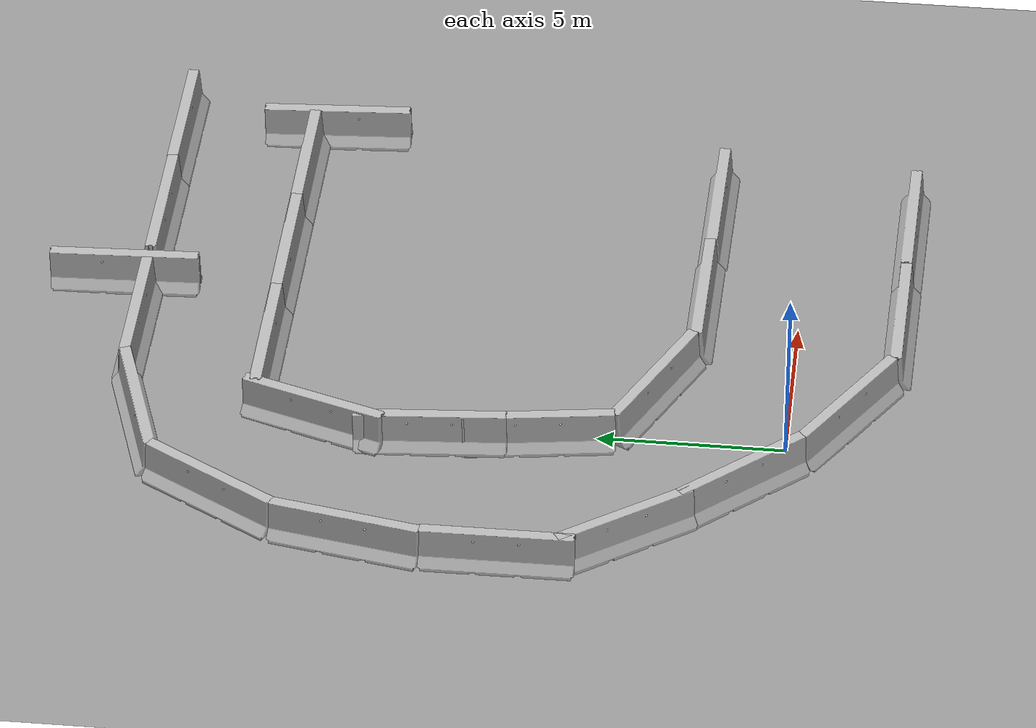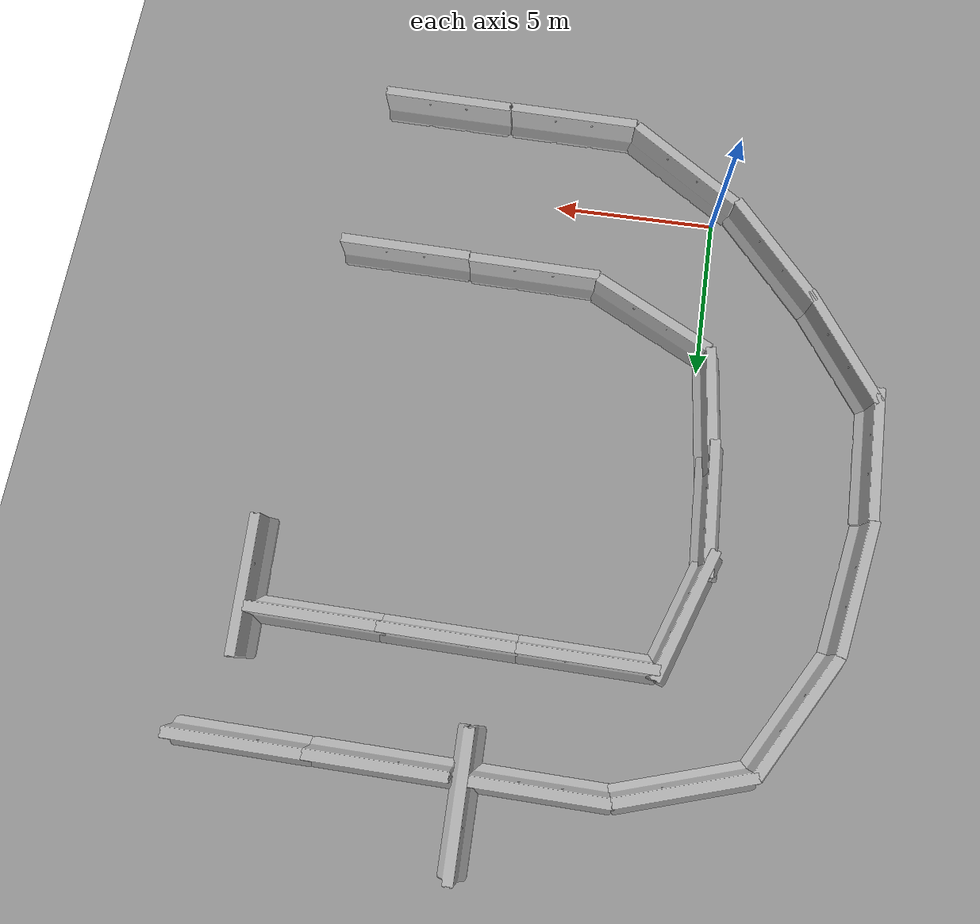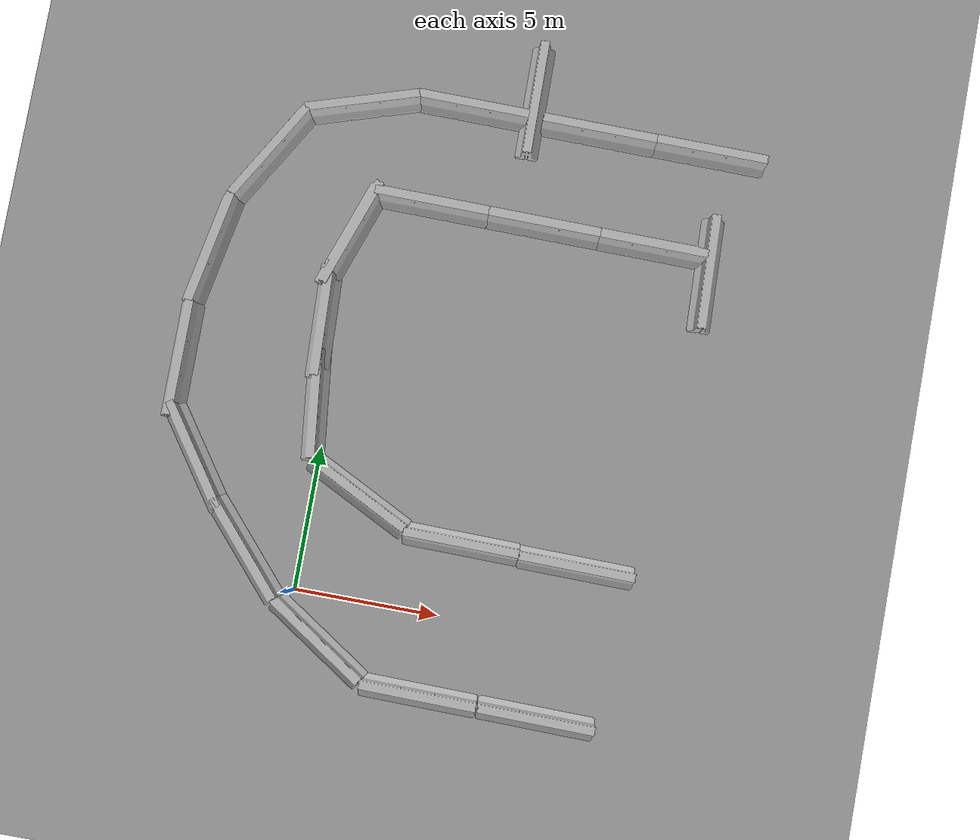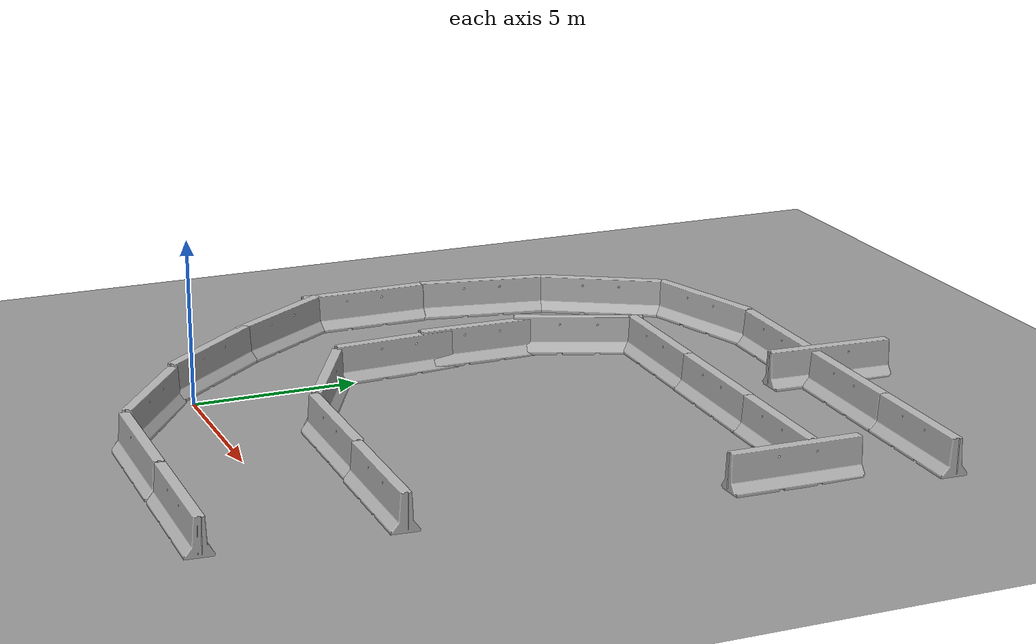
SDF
<sdf version="1.6">
 <world name="default">
  <model name="ground_plane_0">
   <static>1</static>
   <link name="link">
    <collision name="collision">
     <geometry><plane><normal>0 0 1</normal><size>100 100</size></plane></geometry>
     <surface><friction><ode><mu>100</mu><mu2>50</mu2></ode></friction></surface>
    </collision>
    <visual name="visual">
     <cast_shadows>0</cast_shadows>
     <geometry><plane><normal>0 0 1</normal><size>100 100</size></plane></geometry>
     <material>
      <script><uri>file://media/materials/scripts/gazebo.material</uri><name>Gazebo/Grey</name></script>
     </material>
    </visual>
    <velocity_decay><linear>0</linear><angular>0</angular></velocity_decay>
   </link>
   <pose>0.497681 0 0 0 -0 0</pose>
  </model>
  <model name="jersey_barrier_clone_3">
   <static>1</static>
   <link name="link">
    <visual name="visual">
     <geometry>
      <mesh><uri>model://jersey_barrier/meshes/jersey_barrier.dae</uri><scale>1 1 1</scale></mesh>
     </geometry>
    </visual>
    <collision name="upright">
     <pose>0 0 0.5715 0 -0 0</pose>
     <geometry><box><size>4.06542 0.3063 1.143</size></box></geometry>
    </collision>
    <collision name="base">
     <pose>0 0 0.032258 0 -0 0</pose>
     <geometry><box><size>4.06542 0.8107 0.064516</size></box></geometry>
    </collision>
    <collision name="base2">
     <pose>0 0 0.1 0 -0 0</pose>
     <geometry><box><size>4.06542 0.65 0.1</size></box></geometry>
    </collision>
    <collision name="base3">
     <pose>0 0 0.2 0 -0 0</pose>
     <geometry><box><size>4.06542 0.5 0.1</size></box></geometry>
    </collision>
    <collision name="left-angle">
     <pose>0 -0.224 0.2401 0.9 -0 0</pose>
     <geometry><box><size>4.06542 0.5 0.064516</size></box></geometry>
    </collision>
    <collision name="right-angle">
     <pose>0 0.224 0.2401 -0.9 0 0</pose>
     <geometry><box><size>4.06542 0.5 0.064516</size></box></geometry>
    </collision>
    <velocity_decay><linear>0</linear><angular>0</angular></velocity_decay>
   </link>
   <pose>-4.2138 3.93525 0 0 0 -0.963328</pose>
  </model>
  <model name="jersey_barrier_clone_4">
   <static>1</static>
   <link name="link">
    <visual name="visual">
     <geometry>
      <mesh><uri>model://jersey_barrier/meshes/jersey_barrier.dae</uri><scale>1 1 1</scale></mesh>
     </geometry>
    </visual>
    <collision name="upright">
     <pose>0 0 0.5715 0 -0 0</pose>
     <geometry><box><size>4.06542 0.3063 1.143</size></box></geometry>
    </collision>
    <collision name="base">
     <pose>0 0 0.032258 0 -0 0</pose>
     <geometry><box><size>4.06542 0.8107 0.064516</size></box></geometry>
    </collision>
    <collision name="base2">
     <pose>0 0 0.1 0 -0 0</pose>
     <geometry><box><size>4.06542 0.65 0.1</size></box></geometry>
    </collision>
    <collision name="base3">
     <pose>0 0 0.2 0 -0 0</pose>
     <geometry><box><size>4.06542 0.5 0.1</size></box></geometry>
    </collision>
    <collision name="left-angle">
     <pose>0 -0.224 0.2401 0.9 -0 0</pose>
     <geometry><box><size>4.06542 0.5 0.064516</size></box></geometry>
    </collision>
    <collision name="right-angle">
     <pose>0 0.224 0.2401 -0.9 0 0</pose>
     <geometry><box><size>4.06542 0.5 0.064516</size></box></geometry>
    </collision>
    <velocity_decay><linear>0</linear><angular>0</angular></velocity_decay>
   </link>
   <pose>-1.94426 1.06883 0 0 0 -0.851266</pose>
  </model>
  <model name="jersey_barrier_clone_5">
   <static>1</static>
   <link name="link">
    <visual name="visual">
     <geometry>
      <mesh><uri>model://jersey_barrier/meshes/jersey_barrier.dae</uri><scale>1 1 1</scale></mesh>
     </geometry>
    </visual>
    <collision name="upright">
     <pose>0 0 0.5715 0 -0 0</pose>
     <geometry><box><size>4.06542 0.3063 1.143</size></box></geometry>
    </collision>
    <collision name="base">
     <pose>0 0 0.032258 0 -0 0</pose>
     <geometry><box><size>4.06542 0.8107 0.064516</size></box></geometry>
    </collision>
    <collision name="base2">
     <pose>0 0 0.1 0 -0 0</pose>
     <geometry><box><size>4.06542 0.65 0.1</size></box></geometry>
    </collision>
    <collision name="base3">
     <pose>0 0 0.2 0 -0 0</pose>
     <geometry><box><size>4.06542 0.5 0.1</size></box></geometry>
    </collision>
    <collision name="left-angle">
     <pose>0 -0.224 0.2401 0.9 -0 0</pose>
     <geometry><box><size>4.06542 0.5 0.064516</size></box></geometry>
    </collision>
    <collision name="right-angle">
     <pose>0 0.224 0.2401 -0.9 0 0</pose>
     <geometry><box><size>4.06542 0.5 0.064516</size></box></geometry>
    </collision>
    <velocity_decay><linear>0</linear><angular>0</angular></velocity_decay>
   </link>
   <pose>1.11669 -1.55695 -0.026558 -0.009767 -0.024954 -0.580017</pose>
  </model>
  <model name="jersey_barrier_clone_6">
   <static>1</static>
   <link name="link">
    <visual name="visual">
     <geometry>
      <mesh><uri>model://jersey_barrier/meshes/jersey_barrier.dae</uri><scale>1 1 1</scale></mesh>
     </geometry>
    </visual>
    <collision name="upright">
     <pose>0 0 0.5715 0 -0 0</pose>
     <geometry><box><size>4.06542 0.3063 1.143</size></box></geometry>
    </collision>
    <collision name="base">
     <pose>0 0 0.032258 0 -0 0</pose>
     <geometry><box><size>4.06542 0.8107 0.064516</size></box></geometry>
    </collision>
    <collision name="base2">
     <pose>0 0 0.1 0 -0 0</pose>
     <geometry><box><size>4.06542 0.65 0.1</size></box></geometry>
    </collision>
    <collision name="base3">
     <pose>0 0 0.2 0 -0 0</pose>
     <geometry><box><size>4.06542 0.5 0.1</size></box></geometry>
    </collision>
    <collision name="left-angle">
     <pose>0 -0.224 0.2401 0.9 -0 0</pose>
     <geometry><box><size>4.06542 0.5 0.064516</size></box></geometry>
    </collision>
    <collision name="right-angle">
     <pose>0 0.224 0.2401 -0.9 0 0</pose>
     <geometry><box><size>4.06542 0.5 0.064516</size></box></geometry>
    </collision>
    <velocity_decay><linear>0</linear><angular>0</angular></velocity_decay>
   </link>
   <pose>-5.33572 7.12455 0 0 0 -1.56843</pose>
  </model>
  <model name="jersey_barrier_clone_9">
   <static>1</static>
   <link name="link">
    <visual name="visual">
     <geometry>
      <mesh><uri>model://jersey_barrier/meshes/jersey_barrier.dae</uri><scale>1 1 1</scale></mesh>
     </geometry>
    </visual>
    <collision name="upright">
     <pose>0 0 0.5715 0 -0 0</pose>
     <geometry><box><size>4.06542 0.3063 1.143</size></box></geometry>
    </collision>
    <collision name="base">
     <pose>0 0 0.032258 0 -0 0</pose>
     <geometry><box><size>4.06542 0.8107 0.064516</size></box></geometry>
    </collision>
    <collision name="base2">
     <pose>0 0 0.1 0 -0 0</pose>
     <geometry><box><size>4.06542 0.65 0.1</size></box></geometry>
    </collision>
    <collision name="base3">
     <pose>0 0 0.2 0 -0 0</pose>
     <geometry><box><size>4.06542 0.5 0.1</size></box></geometry>
    </collision>
    <collision name="left-angle">
     <pose>0 -0.224 0.2401 0.9 -0 0</pose>
     <geometry><box><size>4.06542 0.5 0.064516</size></box></geometry>
    </collision>
    <collision name="right-angle">
     <pose>0 0.224 0.2401 -0.9 0 0</pose>
     <geometry><box><size>4.06542 0.5 0.064516</size></box></geometry>
    </collision>
    <velocity_decay><linear>0</linear><angular>0</angular></velocity_decay>
   </link>
   <pose>-5.01886 11.1062 0 0 0 -1.75706</pose>
  </model>
  <model name="jersey_barrier_clone_10">
   <static>1</static>
   <link name="link">
    <visual name="visual">
     <geometry>
      <mesh><uri>model://jersey_barrier/meshes/jersey_barrier.dae</uri><scale>1 1 1</scale></mesh>
     </geometry>
    </visual>
    <collision name="upright">
     <pose>0 0 0.5715 0 -0 0</pose>
     <geometry><box><size>4.06542 0.3063 1.143</size></box></geometry>
    </collision>
    <collision name="base">
     <pose>0 0 0.032258 0 -0 0</pose>
     <geometry><box><size>4.06542 0.8107 0.064516</size></box></geometry>
    </collision>
    <collision name="base2">
     <pose>0 0 0.1 0 -0 0</pose>
     <geometry><box><size>4.06542 0.65 0.1</size></box></geometry>
    </collision>
    <collision name="base3">
     <pose>0 0 0.2 0 -0 0</pose>
     <geometry><box><size>4.06542 0.5 0.1</size></box></geometry>
    </collision>
    <collision name="left-angle">
     <pose>0 -0.224 0.2401 0.9 -0 0</pose>
     <geometry><box><size>4.06542 0.5 0.064516</size></box></geometry>
    </collision>
    <collision name="right-angle">
     <pose>0 0.224 0.2401 -0.9 0 0</pose>
     <geometry><box><size>4.06542 0.5 0.064516</size></box></geometry>
    </collision>
    <velocity_decay><linear>0</linear><angular>0</angular></velocity_decay>
   </link>
   <pose>-3.63028 14.8068 0 0 0 -2.10288</pose>
  </model>
  <model name="jersey_barrier_clone_8_clone">
   <static>1</static>
   <link name="link">
    <visual name="visual">
     <geometry>
      <mesh><uri>model://jersey_barrier/meshes/jersey_barrier.dae</uri><scale>1 1 1</scale></mesh>
     </geometry>
    </visual>
    <collision name="upright">
     <pose>0 0 0.5715 0 -0 0</pose>
     <geometry><box><size>4.06542 0.3063 1.143</size></box></geometry>
    </collision>
    <collision name="base">
     <pose>0 0 0.032258 0 -0 0</pose>
     <geometry><box><size>4.06542 0.8107 0.064516</size></box></geometry>
    </collision>
    <collision name="base2">
     <pose>0 0 0.1 0 -0 0</pose>
     <geometry><box><size>4.06542 0.65 0.1</size></box></geometry>
    </collision>
    <collision name="base3">
     <pose>0 0 0.2 0 -0 0</pose>
     <geometry><box><size>4.06542 0.5 0.1</size></box></geometry>
    </collision>
    <collision name="left-angle">
     <pose>0 -0.224 0.2401 0.9 -0 0</pose>
     <geometry><box><size>4.06542 0.5 0.064516</size></box></geometry>
    </collision>
    <collision name="right-angle">
     <pose>0 0.224 0.2401 -0.9 0 0</pose>
     <geometry><box><size>4.06542 0.5 0.064516</size></box></geometry>
    </collision>
    <velocity_decay><linear>0</linear><angular>0</angular></velocity_decay>
   </link>
   <pose>-0.756716 17.1206 0 0 -0 0.301235</pose>
  </model>
  <model name="jersey_barrier_clone_5_clone">
   <static>1</static>
   <link name="link">
    <visual name="visual">
     <geometry>
      <mesh><uri>model://jersey_barrier/meshes/jersey_barrier.dae</uri><scale>1 1 1</scale></mesh>
     </geometry>
    </visual>
    <collision name="upright">
     <pose>0 0 0.5715 0 -0 0</pose>
     <geometry><box><size>4.06542 0.3063 1.143</size></box></geometry>
    </collision>
    <collision name="base">
     <pose>0 0 0.032258 0 -0 0</pose>
     <geometry><box><size>4.06542 0.8107 0.064516</size></box></geometry>
    </collision>
    <collision name="base2">
     <pose>0 0 0.1 0 -0 0</pose>
     <geometry><box><size>4.06542 0.65 0.1</size></box></geometry>
    </collision>
    <collision name="base3">
     <pose>0 0 0.2 0 -0 0</pose>
     <geometry><box><size>4.06542 0.5 0.1</size></box></geometry>
    </collision>
    <collision name="left-angle">
     <pose>0 -0.224 0.2401 0.9 -0 0</pose>
     <geometry><box><size>4.06542 0.5 0.064516</size></box></geometry>
    </collision>
    <collision name="right-angle">
     <pose>0 0.224 0.2401 -0.9 0 0</pose>
     <geometry><box><size>4.06542 0.5 0.064516</size></box></geometry>
    </collision>
    <velocity_decay><linear>0</linear><angular>0</angular></velocity_decay>
   </link>
   <pose>4.83346 -2.77552 -0.025828 -0.021605 -0.003365 -0.015417</pose>
  </model>
  <model name="jersey_barrier_clone_5_clone_clone">
   <static>1</static>
   <link name="link">
    <visual name="visual">
     <geometry>
      <mesh><uri>model://jersey_barrier/meshes/jersey_barrier.dae</uri><scale>1 1 1</scale></mesh>
     </geometry>
    </visual>
    <collision name="upright">
     <pose>0 0 0.5715 0 -0 0</pose>
     <geometry><box><size>4.06542 0.3063 1.143</size></box></geometry>
    </collision>
    <collision name="base">
     <pose>0 0 0.032258 0 -0 0</pose>
     <geometry><box><size>4.06542 0.8107 0.064516</size></box></geometry>
    </collision>
    <collision name="base2">
     <pose>0 0 0.1 0 -0 0</pose>
     <geometry><box><size>4.06542 0.65 0.1</size></box></geometry>
    </collision>
    <collision name="base3">
     <pose>0 0 0.2 0 -0 0</pose>
     <geometry><box><size>4.06542 0.5 0.1</size></box></geometry>
    </collision>
    <collision name="left-angle">
     <pose>0 -0.224 0.2401 0.9 -0 0</pose>
     <geometry><box><size>4.06542 0.5 0.064516</size></box></geometry>
    </collision>
    <collision name="right-angle">
     <pose>0 0.224 0.2401 -0.9 0 0</pose>
     <geometry><box><size>4.06542 0.5 0.064516</size></box></geometry>
    </collision>
    <velocity_decay><linear>0</linear><angular>0</angular></velocity_decay>
   </link>
   <pose>8.93305 -2.83231 -0.025828 -0.021605 -0.003365 -0.015417</pose>
  </model>
  <model name="jersey_barrier_clone_5_clone_clone_3">
   <static>1</static>
   <link name="link">
    <visual name="visual">
     <geometry>
      <mesh><uri>model://jersey_barrier/meshes/jersey_barrier.dae</uri><scale>1 1 1</scale></mesh>
     </geometry>
    </visual>
    <collision name="upright">
     <pose>0 0 0.5715 0 -0 0</pose>
     <geometry><box><size>4.06542 0.3063 1.143</size></box></geometry>
    </collision>
    <collision name="base">
     <pose>0 0 0.032258 0 -0 0</pose>
     <geometry><box><size>4.06542 0.8107 0.064516</size></box></geometry>
    </collision>
    <collision name="base2">
     <pose>0 0 0.1 0 -0 0</pose>
     <geometry><box><size>4.06542 0.65 0.1</size></box></geometry>
    </collision>
    <collision name="base3">
     <pose>0 0 0.2 0 -0 0</pose>
     <geometry><box><size>4.06542 0.5 0.1</size></box></geometry>
    </collision>
    <collision name="left-angle">
     <pose>0 -0.224 0.2401 0.9 -0 0</pose>
     <geometry><box><size>4.06542 0.5 0.064516</size></box></geometry>
    </collision>
    <collision name="right-angle">
     <pose>0 0.224 0.2401 -0.9 0 0</pose>
     <geometry><box><size>4.06542 0.5 0.064516</size></box></geometry>
    </collision>
    <velocity_decay><linear>0</linear><angular>0</angular></velocity_decay>
   </link>
   <pose>1.57921 3.60488 -0.025828 -0.017952 -0.012484 -0.468527</pose>
  </model>
  <model name="jersey_barrier_clone_5_clone_clone_4">
   <static>1</static>
   <link name="link">
    <visual name="visual">
     <geometry>
      <mesh><uri>model://jersey_barrier/meshes/jersey_barrier.dae</uri><scale>1 1 1</scale></mesh>
     </geometry>
    </visual>
    <collision name="upright">
     <pose>0 0 0.5715 0 -0 0</pose>
     <geometry><box><size>4.06542 0.3063 1.143</size></box></geometry>
    </collision>
    <collision name="base">
     <pose>0 0 0.032258 0 -0 0</pose>
     <geometry><box><size>4.06542 0.8107 0.064516</size></box></geometry>
    </collision>
    <collision name="base2">
     <pose>0 0 0.1 0 -0 0</pose>
     <geometry><box><size>4.06542 0.65 0.1</size></box></geometry>
    </collision>
    <collision name="base3">
     <pose>0 0 0.2 0 -0 0</pose>
     <geometry><box><size>4.06542 0.5 0.1</size></box></geometry>
    </collision>
    <collision name="left-angle">
     <pose>0 -0.224 0.2401 0.9 -0 0</pose>
     <geometry><box><size>4.06542 0.5 0.064516</size></box></geometry>
    </collision>
    <collision name="right-angle">
     <pose>0 0.224 0.2401 -0.9 0 0</pose>
     <geometry><box><size>4.06542 0.5 0.064516</size></box></geometry>
    </collision>
    <velocity_decay><linear>0</linear><angular>0</angular></velocity_decay>
   </link>
   <pose>5.37277 2.5821 -0.027196 -0.021605 -0.003365 -0.015417</pose>
  </model>
  <model name="jersey_barrier_clone_5_clone_clone_5">
   <static>1</static>
   <link name="link">
    <visual name="visual">
     <geometry>
      <mesh><uri>model://jersey_barrier/meshes/jersey_barrier.dae</uri><scale>1 1 1</scale></mesh>
     </geometry>
    </visual>
    <collision name="upright">
     <pose>0 0 0.5715 0 -0 0</pose>
     <geometry><box><size>4.06542 0.3063 1.143</size></box></geometry>
    </collision>
    <collision name="base">
     <pose>0 0 0.032258 0 -0 0</pose>
     <geometry><box><size>4.06542 0.8107 0.064516</size></box></geometry>
    </collision>
    <collision name="base2">
     <pose>0 0 0.1 0 -0 0</pose>
     <geometry><box><size>4.06542 0.65 0.1</size></box></geometry>
    </collision>
    <collision name="base3">
     <pose>0 0 0.2 0 -0 0</pose>
     <geometry><box><size>4.06542 0.5 0.1</size></box></geometry>
    </collision>
    <collision name="left-angle">
     <pose>0 -0.224 0.2401 0.9 -0 0</pose>
     <geometry><box><size>4.06542 0.5 0.064516</size></box></geometry>
    </collision>
    <collision name="right-angle">
     <pose>0 0.224 0.2401 -0.9 0 0</pose>
     <geometry><box><size>4.06542 0.5 0.064516</size></box></geometry>
    </collision>
    <velocity_decay><linear>0</linear><angular>0</angular></velocity_decay>
   </link>
   <pose>9.41053 2.47846 -0.030922 -0.021605 -0.003365 -0.015417</pose>
  </model>
  <model name="jersey_barrier_clone_5_clone_clone_25">
   <static>1</static>
   <link name="link">
    <visual name="visual">
     <geometry>
      <mesh><uri>model://jersey_barrier/meshes/jersey_barrier.dae</uri><scale>1 1 1</scale></mesh>
     </geometry>
    </visual>
    <collision name="upright">
     <pose>0 0 0.5715 0 -0 0</pose>
     <geometry><box><size>4.06542 0.3063 1.143</size></box></geometry>
    </collision>
    <collision name="base">
     <pose>0 0 0.032258 0 -0 0</pose>
     <geometry><box><size>4.06542 0.8107 0.064516</size></box></geometry>
    </collision>
    <collision name="base2">
     <pose>0 0 0.1 0 -0 0</pose>
     <geometry><box><size>4.06542 0.65 0.1</size></box></geometry>
    </collision>
    <collision name="base3">
     <pose>0 0 0.2 0 -0 0</pose>
     <geometry><box><size>4.06542 0.5 0.1</size></box></geometry>
    </collision>
    <collision name="left-angle">
     <pose>0 -0.224 0.2401 0.9 -0 0</pose>
     <geometry><box><size>4.06542 0.5 0.064516</size></box></geometry>
    </collision>
    <collision name="right-angle">
     <pose>0 0.224 0.2401 -0.9 0 0</pose>
     <geometry><box><size>4.06542 0.5 0.064516</size></box></geometry>
    </collision>
    <velocity_decay><linear>0</linear><angular>0</angular></velocity_decay>
   </link>
   <pose>11.4893 17.557 -0.025828 -0.021605 -0.003365 -0.015417</pose>
  </model>
  <model name="jersey_barrier_clone_5_clone_clone_27">
   <static>1</static>
   <link name="link">
    <visual name="visual">
     <geometry>
      <mesh><uri>model://jersey_barrier/meshes/jersey_barrier.dae</uri><scale>1 1 1</scale></mesh>
     </geometry>
    </visual>
    <collision name="upright">
     <pose>0 0 0.5715 0 -0 0</pose>
     <geometry><box><size>4.06542 0.3063 1.143</size></box></geometry>
    </collision>
    <collision name="base">
     <pose>0 0 0.032258 0 -0 0</pose>
     <geometry><box><size>4.06542 0.8107 0.064516</size></box></geometry>
    </collision>
    <collision name="base2">
     <pose>0 0 0.1 0 -0 0</pose>
     <geometry><box><size>4.06542 0.65 0.1</size></box></geometry>
    </collision>
    <collision name="base3">
     <pose>0 0 0.2 0 -0 0</pose>
     <geometry><box><size>4.06542 0.5 0.1</size></box></geometry>
    </collision>
    <collision name="left-angle">
     <pose>0 -0.224 0.2401 0.9 -0 0</pose>
     <geometry><box><size>4.06542 0.5 0.064516</size></box></geometry>
    </collision>
    <collision name="right-angle">
     <pose>0 0.224 0.2401 -0.9 0 0</pose>
     <geometry><box><size>4.06542 0.5 0.064516</size></box></geometry>
    </collision>
    <velocity_decay><linear>0</linear><angular>0</angular></velocity_decay>
   </link>
   <pose>12.152 13.3036 -0.025828 0.002422 -0.021731 -1.54274</pose>
  </model>
  <model name="jersey_barrier_clone_5_clone_clone_28">
   <static>1</static>
   <link name="link">
    <visual name="visual">
     <geometry>
      <mesh><uri>model://jersey_barrier/meshes/jersey_barrier.dae</uri><scale>1 1 1</scale></mesh>
     </geometry>
    </visual>
    <collision name="upright">
     <pose>0 0 0.5715 0 -0 0</pose>
     <geometry><box><size>4.06542 0.3063 1.143</size></box></geometry>
    </collision>
    <collision name="base">
     <pose>0 0 0.032258 0 -0 0</pose>
     <geometry><box><size>4.06542 0.8107 0.064516</size></box></geometry>
    </collision>
    <collision name="base2">
     <pose>0 0 0.1 0 -0 0</pose>
     <geometry><box><size>4.06542 0.65 0.1</size></box></geometry>
    </collision>
    <collision name="base3">
     <pose>0 0 0.2 0 -0 0</pose>
     <geometry><box><size>4.06542 0.5 0.1</size></box></geometry>
    </collision>
    <collision name="left-angle">
     <pose>0 -0.224 0.2401 0.9 -0 0</pose>
     <geometry><box><size>4.06542 0.5 0.064516</size></box></geometry>
    </collision>
    <collision name="right-angle">
     <pose>0 0.224 0.2401 -0.9 0 0</pose>
     <geometry><box><size>4.06542 0.5 0.064516</size></box></geometry>
    </collision>
    <velocity_decay><linear>0</linear><angular>0</angular></velocity_decay>
   </link>
   <pose>9.99373 13.9353 -0.025828 -0.021605 -0.003365 -0.015417</pose>
  </model>
  <model name="jersey_barrier_clone_5_clone_clone_29">
   <static>1</static>
   <link name="link">
    <visual name="visual">
     <geometry>
      <mesh><uri>model://jersey_barrier/meshes/jersey_barrier.dae</uri><scale>1 1 1</scale></mesh>
     </geometry>
    </visual>
    <collision name="upright">
     <pose>0 0 0.5715 0 -0 0</pose>
     <geometry><box><size>4.06542 0.3063 1.143</size></box></geometry>
    </collision>
    <collision name="base">
     <pose>0 0 0.032258 0 -0 0</pose>
     <geometry><box><size>4.06542 0.8107 0.064516</size></box></geometry>
    </collision>
    <collision name="base2">
     <pose>0 0 0.1 0 -0 0</pose>
     <geometry><box><size>4.06542 0.65 0.1</size></box></geometry>
    </collision>
    <collision name="base3">
     <pose>0 0 0.2 0 -0 0</pose>
     <geometry><box><size>4.06542 0.5 0.1</size></box></geometry>
    </collision>
    <collision name="left-angle">
     <pose>0 -0.224 0.2401 0.9 -0 0</pose>
     <geometry><box><size>4.06542 0.5 0.064516</size></box></geometry>
    </collision>
    <collision name="right-angle">
     <pose>0 0.224 0.2401 -0.9 0 0</pose>
     <geometry><box><size>4.06542 0.5 0.064516</size></box></geometry>
    </collision>
    <velocity_decay><linear>0</linear><angular>0</angular></velocity_decay>
   </link>
   <pose>5.1917 18.2919 -0.025828 -0.002824 0.021682 1.58034</pose>
  </model>
  <model name="jersey_barrier_clone_5_clone_clone_30">
   <static>1</static>
   <link name="link">
    <visual name="visual">
     <geometry>
      <mesh><uri>model://jersey_barrier/meshes/jersey_barrier.dae</uri><scale>1 1 1</scale></mesh>
     </geometry>
    </visual>
    <collision name="upright">
     <pose>0 0 0.5715 0 -0 0</pose>
     <geometry><box><size>4.06542 0.3063 1.143</size></box></geometry>
    </collision>
    <collision name="base">
     <pose>0 0 0.032258 0 -0 0</pose>
     <geometry><box><size>4.06542 0.8107 0.064516</size></box></geometry>
    </collision>
    <collision name="base2">
     <pose>0 0 0.1 0 -0 0</pose>
     <geometry><box><size>4.06542 0.65 0.1</size></box></geometry>
    </collision>
    <collision name="base3">
     <pose>0 0 0.2 0 -0 0</pose>
     <geometry><box><size>4.06542 0.5 0.1</size></box></geometry>
    </collision>
    <collision name="left-angle">
     <pose>0 -0.224 0.2401 0.9 -0 0</pose>
     <geometry><box><size>4.06542 0.5 0.064516</size></box></geometry>
    </collision>
    <collision name="right-angle">
     <pose>0 0.224 0.2401 -0.9 0 0</pose>
     <geometry><box><size>4.06542 0.5 0.064516</size></box></geometry>
    </collision>
    <velocity_decay><linear>0</linear><angular>0</angular></velocity_decay>
   </link>
   <pose>7.5818 17.6025 -0.025828 -0.021605 -0.003365 -0.015417</pose>
  </model>
  <model name="jersey_barrier_clone_5_clone_clone_31">
   <static>1</static>
   <link name="link">
    <visual name="visual">
     <geometry>
      <mesh><uri>model://jersey_barrier/meshes/jersey_barrier.dae</uri><scale>1 1 1</scale></mesh>
     </geometry>
    </visual>
    <collision name="upright">
     <pose>0 0 0.5715 0 -0 0</pose>
     <geometry><box><size>4.06542 0.3063 1.143</size></box></geometry>
    </collision>
    <collision name="base">
     <pose>0 0 0.032258 0 -0 0</pose>
     <geometry><box><size>4.06542 0.8107 0.064516</size></box></geometry>
    </collision>
    <collision name="base2">
     <pose>0 0 0.1 0 -0 0</pose>
     <geometry><box><size>4.06542 0.65 0.1</size></box></geometry>
    </collision>
    <collision name="base3">
     <pose>0 0 0.2 0 -0 0</pose>
     <geometry><box><size>4.06542 0.5 0.1</size></box></geometry>
    </collision>
    <collision name="left-angle">
     <pose>0 -0.224 0.2401 0.9 -0 0</pose>
     <geometry><box><size>4.06542 0.5 0.064516</size></box></geometry>
    </collision>
    <collision name="right-angle">
     <pose>0 0.224 0.2401 -0.9 0 0</pose>
     <geometry><box><size>4.06542 0.5 0.064516</size></box></geometry>
    </collision>
    <velocity_decay><linear>0</linear><angular>0</angular></velocity_decay>
   </link>
   <pose>6.21357 13.9918 -0.025828 -0.021605 -0.003365 -0.015417</pose>
  </model>
  <model name="jersey_barrier_clone_5_clone_clone_32">
   <static>1</static>
   <link name="link">
    <visual name="visual">
     <geometry>
      <mesh><uri>model://jersey_barrier/meshes/jersey_barrier.dae</uri><scale>1 1 1</scale></mesh>
     </geometry>
    </visual>
    <collision name="upright">
     <pose>0 0 0.5715 0 -0 0</pose>
     <geometry><box><size>4.06542 0.3063 1.143</size></box></geometry>
    </collision>
    <collision name="base">
     <pose>0 0 0.032258 0 -0 0</pose>
     <geometry><box><size>4.06542 0.8107 0.064516</size></box></geometry>
    </collision>
    <collision name="base2">
     <pose>0 0 0.1 0 -0 0</pose>
     <geometry><box><size>4.06542 0.65 0.1</size></box></geometry>
    </collision>
    <collision name="base3">
     <pose>0 0 0.2 0 -0 0</pose>
     <geometry><box><size>4.06542 0.5 0.1</size></box></geometry>
    </collision>
    <collision name="left-angle">
     <pose>0 -0.224 0.2401 0.9 -0 0</pose>
     <geometry><box><size>4.06542 0.5 0.064516</size></box></geometry>
    </collision>
    <collision name="right-angle">
     <pose>0 0.224 0.2401 -0.9 0 0</pose>
     <geometry><box><size>4.06542 0.5 0.064516</size></box></geometry>
    </collision>
    <velocity_decay><linear>0</linear><angular>0</angular></velocity_decay>
   </link>
   <pose>3.10776 17.6791 -0.025828 -0.021605 -0.003365 -0.015417</pose>
  </model>
  <model name="jersey_barrier_clone_5_clone_clone_33">
   <static>1</static>
   <link name="link">
    <visual name="visual">
     <geometry>
      <mesh><uri>model://jersey_barrier/meshes/jersey_barrier.dae</uri><scale>1 1 1</scale></mesh>
     </geometry>
    </visual>
    <collision name="upright">
     <pose>0 0 0.5715 0 -0 0</pose>
     <geometry><box><size>4.06542 0.3063 1.143</size></box></geometry>
    </collision>
    <collision name="base">
     <pose>0 0 0.032258 0 -0 0</pose>
     <geometry><box><size>4.06542 0.8107 0.064516</size></box></geometry>
    </collision>
    <collision name="base2">
     <pose>0 0 0.1 0 -0 0</pose>
     <geometry><box><size>4.06542 0.65 0.1</size></box></geometry>
    </collision>
    <collision name="base3">
     <pose>0 0 0.2 0 -0 0</pose>
     <geometry><box><size>4.06542 0.5 0.1</size></box></geometry>
    </collision>
    <collision name="left-angle">
     <pose>0 -0.224 0.2401 0.9 -0 0</pose>
     <geometry><box><size>4.06542 0.5 0.064516</size></box></geometry>
    </collision>
    <collision name="right-angle">
     <pose>0 0.224 0.2401 -0.9 0 0</pose>
     <geometry><box><size>4.06542 0.5 0.064516</size></box></geometry>
    </collision>
    <velocity_decay><linear>0</linear><angular>0</angular></velocity_decay>
   </link>
   <pose>2.26844 14.0506 -0.025828 -0.021605 -0.003365 -0.015417</pose>
  </model>
  <model name="jersey_barrier_clone_5_clone_clone_34">
   <static>1</static>
   <link name="link">
    <visual name="visual">
     <geometry>
      <mesh><uri>model://jersey_barrier/meshes/jersey_barrier.dae</uri><scale>1 1 1</scale></mesh>
     </geometry>
    </visual>
    <collision name="upright">
     <pose>0 0 0.5715 0 -0 0</pose>
     <geometry><box><size>4.06542 0.3063 1.143</size></box></geometry>
    </collision>
    <collision name="base">
     <pose>0 0 0.032258 0 -0 0</pose>
     <geometry><box><size>4.06542 0.8107 0.064516</size></box></geometry>
    </collision>
    <collision name="base2">
     <pose>0 0 0.1 0 -0 0</pose>
     <geometry><box><size>4.06542 0.65 0.1</size></box></geometry>
    </collision>
    <collision name="base3">
     <pose>0 0 0.2 0 -0 0</pose>
     <geometry><box><size>4.06542 0.5 0.1</size></box></geometry>
    </collision>
    <collision name="left-angle">
     <pose>0 -0.224 0.2401 0.9 -0 0</pose>
     <geometry><box><size>4.06542 0.5 0.064516</size></box></geometry>
    </collision>
    <collision name="right-angle">
     <pose>0 0.224 0.2401 -0.9 0 0</pose>
     <geometry><box><size>4.06542 0.5 0.064516</size></box></geometry>
    </collision>
    <velocity_decay><linear>0</linear><angular>0</angular></velocity_decay>
   </link>
   <pose>-0.292624 12.4726 -0.025828 -0.010016 0.019437 1.23398</pose>
  </model>
  <model name="jersey_barrier_clone_5_clone_clone_35">
   <static>1</static>
   <link name="link">
    <visual name="visual">
     <geometry>
      <mesh><uri>model://jersey_barrier/meshes/jersey_barrier.dae</uri><scale>1 1 1</scale></mesh>
     </geometry>
    </visual>
    <collision name="upright">
     <pose>0 0 0.5715 0 -0 0</pose>
     <geometry><box><size>4.06542 0.3063 1.143</size></box></geometry>
    </collision>
    <collision name="base">
     <pose>0 0 0.032258 0 -0 0</pose>
     <geometry><box><size>4.06542 0.8107 0.064516</size></box></geometry>
    </collision>
    <collision name="base2">
     <pose>0 0 0.1 0 -0 0</pose>
     <geometry><box><size>4.06542 0.65 0.1</size></box></geometry>
    </collision>
    <collision name="base3">
     <pose>0 0 0.2 0 -0 0</pose>
     <geometry><box><size>4.06542 0.5 0.1</size></box></geometry>
    </collision>
    <collision name="left-angle">
     <pose>0 -0.224 0.2401 0.9 -0 0</pose>
     <geometry><box><size>4.06542 0.5 0.064516</size></box></geometry>
    </collision>
    <collision name="right-angle">
     <pose>0 0.224 0.2401 -0.9 0 0</pose>
     <geometry><box><size>4.06542 0.5 0.064516</size></box></geometry>
    </collision>
    <velocity_decay><linear>0</linear><angular>0</angular></velocity_decay>
   </link>
   <pose>-0.464243 6.50222 -0.025828 0.000532 -0.021859 -1.45607</pose>
  </model>
  <model name="jersey_barrier_clone_5_clone_clone_36">
   <static>1</static>
   <link name="link">
    <visual name="visual">
     <geometry>
      <mesh><uri>model://jersey_barrier/meshes/jersey_barrier.dae</uri><scale>1 1 1</scale></mesh>
     </geometry>
    </visual>
    <collision name="upright">
     <pose>0 0 0.5715 0 -0 0</pose>
     <geometry><box><size>4.06542 0.3063 1.143</size></box></geometry>
    </collision>
    <collision name="base">
     <pose>0 0 0.032258 0 -0 0</pose>
     <geometry><box><size>4.06542 0.8107 0.064516</size></box></geometry>
    </collision>
    <collision name="base2">
     <pose>0 0 0.1 0 -0 0</pose>
     <geometry><box><size>4.06542 0.65 0.1</size></box></geometry>
    </collision>
    <collision name="base3">
     <pose>0 0 0.2 0 -0 0</pose>
     <geometry><box><size>4.06542 0.5 0.1</size></box></geometry>
    </collision>
    <collision name="left-angle">
     <pose>0 -0.224 0.2401 0.9 -0 0</pose>
     <geometry><box><size>4.06542 0.5 0.064516</size></box></geometry>
    </collision>
    <collision name="right-angle">
     <pose>0 0.224 0.2401 -0.9 0 0</pose>
     <geometry><box><size>4.06542 0.5 0.064516</size></box></geometry>
    </collision>
    <velocity_decay><linear>0</linear><angular>0</angular></velocity_decay>
   </link>
   <pose>-0.723827 9.34253 -0.025828 0.002053 -0.021769 -1.52575</pose>
  </model>
 </world>
</sdf>
